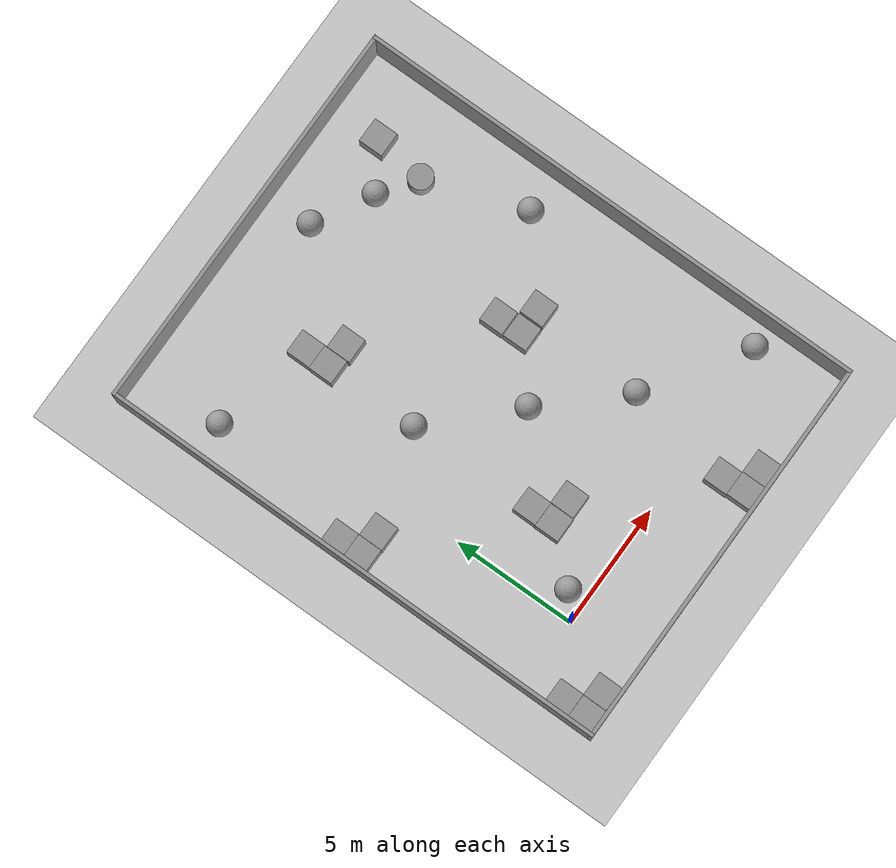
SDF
<sdf version="1.7">
 <world name="default">
  <light name="sun" type="directional">
   <pose>0 0 10 0 -0 0</pose>
   <diffuse>0.8 0.8 0.8 1</diffuse>
   <specular>0.2 0.2 0.2 1</specular>
   <attenuation>
    <range>1000</range>
    <constant>0.9</constant>
    <linear>0.01</linear>
    <quadratic>0.001</quadratic>
   </attenuation>
   <direction>-0.5 0.1 -0.9</direction>
   <spot><inner_angle>0</inner_angle><outer_angle>0</outer_angle><falloff>0</falloff></spot>
  </light>
  <model name="ground_plane">
   <pose>13.5 13.5 0 0 -0 0</pose>
   <static>1</static>
   <link name="link">
    <collision name="collision">
     <geometry><plane><normal>0 0 1</normal><size>100 100</size></plane></geometry>
     <surface><friction><ode><mu>100</mu><mu2>50</mu2></ode></friction></surface>
    </collision>
    <visual name="visual">
     <cast_shadows>0</cast_shadows>
     <geometry><plane><normal>0 0 1</normal><size>100 100</size></plane></geometry>
     <material>
      <script><uri>file://media/materials/scripts/gazebo.material</uri><name>Gazebo/Grey</name></script>
     </material>
    </visual>
   </link>
  </model>
  <gravity>0 0 -9.8</gravity>
  <magnetic_field>6e-06 2.3e-05 -4.2e-05</magnetic_field>
  <atmosphere type="adiabatic"/>
  <physics type="ode">
   <max_step_size>0.001</max_step_size>
   <real_time_factor>1</real_time_factor>
   <real_time_update_rate>1000</real_time_update_rate>
  </physics>
  <scene><ambient>0.4 0.4 0.4 1</ambient><background>0.7 0.7 0.7 1</background><shadows>1</shadows></scene>
  <audio><device>default</device></audio>
  <spherical_coordinates>
   <surface_model>EARTH_WGS84</surface_model>
   <latitude_deg>0</latitude_deg>
   <longitude_deg>0</longitude_deg>
   <elevation>0</elevation>
   <heading_deg>0</heading_deg>
  </spherical_coordinates>
  <model name="Untitled">
   <pose>5 7.5 0 0 -0 0</pose>
   <link name="Wall_0">
    <collision name="Wall_0_Collision">
     <geometry><box><size>16.15 0.15 2.5</size></box></geometry>
     <pose>0 0 1.25 0 -0 0</pose>
    </collision>
    <visual name="Wall_0_Visual">
     <pose>0 0 1.25 0 -0 0</pose>
     <geometry><box><size>16.15 0.15 2.5</size></box></geometry>
     <material>
      <script><uri>file://media/materials/scripts/gazebo.material</uri><name>Gazebo/Grey</name></script>
      <ambient>1 1 1 1</ambient>
     </material>
     <meta><layer>0</layer></meta>
    </visual>
    <pose>-0 -10.5 0 0 -0 0</pose>
   </link>
   <link name="Wall_2">
    <collision name="Wall_2_Collision">
     <geometry><box><size>21.15 0.15 2.5</size></box></geometry>
     <pose>0 0 1.25 0 -0 0</pose>
    </collision>
    <visual name="Wall_2_Visual">
     <pose>0 0 1.25 0 -0 0</pose>
     <geometry><box><size>21.15 0.15 2.5</size></box></geometry>
     <material>
      <script><uri>file://media/materials/scripts/gazebo.material</uri><name>Gazebo/Grey</name></script>
      <ambient>1 1 1 1</ambient>
     </material>
     <meta><layer>0</layer></meta>
    </visual>
    <pose>-8 0 0 0 -0 1.5708</pose>
   </link>
   <link name="Wall_4">
    <collision name="Wall_4_Collision">
     <geometry><box><size>16.15 0.15 2.5</size></box></geometry>
     <pose>0 0 1.25 0 -0 0</pose>
    </collision>
    <visual name="Wall_4_Visual">
     <pose>0 0 1.25 0 -0 0</pose>
     <geometry><box><size>16.15 0.15 2.5</size></box></geometry>
     <material>
      <script><uri>file://media/materials/scripts/gazebo.material</uri><name>Gazebo/Grey</name></script>
      <ambient>1 1 1 1</ambient>
     </material>
     <meta><layer>0</layer></meta>
    </visual>
    <pose>-0 10.5 0 0 -0 0</pose>
   </link>
   <link name="Wall_6">
    <collision name="Wall_6_Collision">
     <geometry><box><size>21.15 0.15 2.5</size></box></geometry>
     <pose>0 0 1.25 0 -0 0</pose>
    </collision>
    <visual name="Wall_6_Visual">
     <pose>0 0 1.25 0 -0 0</pose>
     <geometry><box><size>21.15 0.15 2.5</size></box></geometry>
     <material>
      <script><uri>file://media/materials/scripts/gazebo.material</uri><name>Gazebo/Grey</name></script>
      <ambient>1 1 1 1</ambient>
     </material>
     <meta><layer>0</layer></meta>
    </visual>
    <pose>8 0 0 0 -0 1.5708</pose>
   </link>
   <static>1</static>
  </model>
  <model name="unit_box">
   <pose>2.54139 3.54077 0.499995 0 -1e-05 -0.007258</pose>
   <link name="link">
    <inertial>
     <mass>1</mass>
     <inertia>
      <ixx>0.166667</ixx>
      <ixy>0</ixy>
      <ixz>0</ixz>
      <iyy>0.166667</iyy>
      <iyz>0</iyz>
      <izz>0.166667</izz>
     </inertia>
    </inertial>
    <collision name="collision"><geometry><box><size>1 1 1</size></box></geometry></collision>
    <visual name="visual">
     <geometry><box><size>1 1 1</size></box></geometry>
     <material>
      <script><name>Gazebo/Grey</name><uri>file://media/materials/scripts/gazebo.material</uri></script>
     </material>
    </visual>
   </link>
  </model>
  <model name="unit_box_0">
   <pose>2.52416 2.53778 0.499995 -0 1e-05 -0.001475</pose>
   <link name="link">
    <inertial>
     <mass>1</mass>
     <inertia>
      <ixx>0.166667</ixx>
      <ixy>0</ixy>
      <ixz>0</ixz>
      <iyy>0.166667</iyy>
      <iyz>0</iyz>
      <izz>0.166667</izz>
     </inertia>
    </inertial>
    <collision name="collision"><geometry><box><size>1 1 1</size></box></geometry></collision>
    <visual name="visual">
     <geometry><box><size>1 1 1</size></box></geometry>
     <material>
      <script><name>Gazebo/Grey</name><uri>file://media/materials/scripts/gazebo.material</uri></script>
     </material>
    </visual>
   </link>
  </model>
  <model name="unit_box_1">
   <pose>3.5347 2.56919 0.499995 -1e-05 -0 -0.006636</pose>
   <link name="link">
    <inertial>
     <mass>1</mass>
     <inertia>
      <ixx>0.166667</ixx>
      <ixy>0</ixy>
      <ixz>0</ixz>
      <iyy>0.166667</iyy>
      <iyz>0</iyz>
      <izz>0.166667</izz>
     </inertia>
    </inertial>
    <collision name="collision"><geometry><box><size>1 1 1</size></box></geometry></collision>
    <visual name="visual">
     <geometry><box><size>1 1 1</size></box></geometry>
     <material>
      <script><name>Gazebo/Grey</name><uri>file://media/materials/scripts/gazebo.material</uri></script>
     </material>
    </visual>
   </link>
  </model>
  <model name="unit_box_2">
   <pose>-2.40911 -1.40816 0.499995 -1e-05 -0 7.6e-05</pose>
   <link name="link">
    <inertial>
     <mass>1</mass>
     <inertia>
      <ixx>0.166667</ixx>
      <ixy>0</ixy>
      <ixz>0</ixz>
      <iyy>0.166667</iyy>
      <iyz>0</iyz>
      <izz>0.166667</izz>
     </inertia>
    </inertial>
    <collision name="collision"><geometry><box><size>1 1 1</size></box></geometry></collision>
    <visual name="visual">
     <geometry><box><size>1 1 1</size></box></geometry>
     <material>
      <script><name>Gazebo/Grey</name><uri>file://media/materials/scripts/gazebo.material</uri></script>
     </material>
    </visual>
   </link>
  </model>
  <model name="unit_box_3">
   <pose>-2.42275 -2.41137 0.499995 1e-05 -0 -0.004184</pose>
   <link name="link">
    <inertial>
     <mass>1</mass>
     <inertia>
      <ixx>0.166667</ixx>
      <ixy>0</ixy>
      <ixz>0</ixz>
      <iyy>0.166667</iyy>
      <iyz>0</iyz>
      <izz>0.166667</izz>
     </inertia>
    </inertial>
    <collision name="collision"><geometry><box><size>1 1 1</size></box></geometry></collision>
    <visual name="visual">
     <geometry><box><size>1 1 1</size></box></geometry>
     <material>
      <script><name>Gazebo/Grey</name><uri>file://media/materials/scripts/gazebo.material</uri></script>
     </material>
    </visual>
   </link>
  </model>
  <model name="unit_box_4">
   <pose>-1.42136 -2.40929 0.499995 -0 1e-05 -0.00231</pose>
   <link name="link">
    <inertial>
     <mass>1</mass>
     <inertia>
      <ixx>0.166667</ixx>
      <ixy>0</ixy>
      <ixz>0</ixz>
      <iyy>0.166667</iyy>
      <iyz>0</iyz>
      <izz>0.166667</izz>
     </inertia>
    </inertial>
    <collision name="collision"><geometry><box><size>1 1 1</size></box></geometry></collision>
    <visual name="visual">
     <geometry><box><size>1 1 1</size></box></geometry>
     <material>
      <script><name>Gazebo/Grey</name><uri>file://media/materials/scripts/gazebo.material</uri></script>
     </material>
    </visual>
   </link>
  </model>
  <model name="unit_box_5">
   <pose>7.48368 -2.42477 0.499995 -0 -1e-05 0.000442</pose>
   <link name="link">
    <inertial>
     <mass>1</mass>
     <inertia>
      <ixx>0.166667</ixx>
      <ixy>0</ixy>
      <ixz>0</ixz>
      <iyy>0.166667</iyy>
      <iyz>0</iyz>
      <izz>0.166667</izz>
     </inertia>
    </inertial>
    <collision name="collision"><geometry><box><size>1 1 1</size></box></geometry></collision>
    <visual name="visual">
     <geometry><box><size>1 1 1</size></box></geometry>
     <material>
      <script><name>Gazebo/Grey</name><uri>file://media/materials/scripts/gazebo.material</uri></script>
     </material>
    </visual>
   </link>
  </model>
  <model name="unit_box_6">
   <pose>8.48405 -2.42161 0.499995 1e-05 -0 -4e-05</pose>
   <link name="link">
    <inertial>
     <mass>1</mass>
     <inertia>
      <ixx>0.166667</ixx>
      <ixy>0</ixy>
      <ixz>0</ixz>
      <iyy>0.166667</iyy>
      <iyz>0</iyz>
      <izz>0.166667</izz>
     </inertia>
    </inertial>
    <collision name="collision"><geometry><box><size>1 1 1</size></box></geometry></collision>
    <visual name="visual">
     <geometry><box><size>1 1 1</size></box></geometry>
     <material>
      <script><name>Gazebo/Grey</name><uri>file://media/materials/scripts/gazebo.material</uri></script>
     </material>
    </visual>
   </link>
  </model>
  <model name="unit_box_7">
   <pose>7.45235 -1.42471 0.499995 -0 -1e-05 0.000585</pose>
   <link name="link">
    <inertial>
     <mass>1</mass>
     <inertia>
      <ixx>0.166667</ixx>
      <ixy>0</ixy>
      <ixz>0</ixz>
      <iyy>0.166667</iyy>
      <iyz>0</iyz>
      <izz>0.166667</izz>
     </inertia>
    </inertial>
    <collision name="collision"><geometry><box><size>1 1 1</size></box></geometry></collision>
    <visual name="visual">
     <geometry><box><size>1 1 1</size></box></geometry>
     <material>
      <script><name>Gazebo/Grey</name><uri>file://media/materials/scripts/gazebo.material</uri></script>
     </material>
    </visual>
   </link>
  </model>
  <model name="unit_box_8">
   <pose>7.48243 8.5473 0.499995 -1e-05 -0 -0</pose>
   <link name="link">
    <inertial>
     <mass>1</mass>
     <inertia>
      <ixx>0.166667</ixx>
      <ixy>0</ixy>
      <ixz>0</ixz>
      <iyy>0.166667</iyy>
      <iyz>0</iyz>
      <izz>0.166667</izz>
     </inertia>
    </inertial>
    <collision name="collision"><geometry><box><size>1 1 1</size></box></geometry></collision>
    <visual name="visual">
     <geometry><box><size>1 1 1</size></box></geometry>
     <material>
      <script><name>Gazebo/Grey</name><uri>file://media/materials/scripts/gazebo.material</uri></script>
     </material>
    </visual>
   </link>
  </model>
  <model name="unit_box_9">
   <pose>7.49809 7.50917 0.499995 0 -1e-05 0</pose>
   <link name="link">
    <inertial>
     <mass>1</mass>
     <inertia>
      <ixx>0.166667</ixx>
      <ixy>0</ixy>
      <ixz>0</ixz>
      <iyy>0.166667</iyy>
      <iyz>0</iyz>
      <izz>0.166667</izz>
     </inertia>
    </inertial>
    <collision name="collision"><geometry><box><size>1 1 1</size></box></geometry></collision>
    <visual name="visual">
     <geometry><box><size>1 1 1</size></box></geometry>
     <material>
      <script><name>Gazebo/Grey</name><uri>file://media/materials/scripts/gazebo.material</uri></script>
     </material>
    </visual>
   </link>
  </model>
  <model name="unit_box_10">
   <pose>8.5606 7.52025 0.499995 -1e-05 -0 -0</pose>
   <link name="link">
    <inertial>
     <mass>1</mass>
     <inertia>
      <ixx>0.166667</ixx>
      <ixy>0</ixy>
      <ixz>0</ixz>
      <iyy>0.166667</iyy>
      <iyz>0</iyz>
      <izz>0.166667</izz>
     </inertia>
    </inertial>
    <collision name="collision"><geometry><box><size>1 1 1</size></box></geometry></collision>
    <visual name="visual">
     <geometry><box><size>1 1 1</size></box></geometry>
     <material>
      <script><name>Gazebo/Grey</name><uri>file://media/materials/scripts/gazebo.material</uri></script>
     </material>
    </visual>
   </link>
  </model>
  <model name="unit_box_11">
   <pose>-2.4185 8.52025 0.499995 -1e-05 -0 0.000514</pose>
   <link name="link">
    <inertial>
     <mass>1</mass>
     <inertia>
      <ixx>0.166667</ixx>
      <ixy>0</ixy>
      <ixz>0</ixz>
      <iyy>0.166667</iyy>
      <iyz>0</iyz>
      <izz>0.166667</izz>
     </inertia>
    </inertial>
    <collision name="collision"><geometry><box><size>1 1 1</size></box></geometry></collision>
    <visual name="visual">
     <geometry><box><size>1 1 1</size></box></geometry>
     <material>
      <script><name>Gazebo/Grey</name><uri>file://media/materials/scripts/gazebo.material</uri></script>
     </material>
    </visual>
   </link>
  </model>
  <model name="unit_box_12">
   <pose>-2.42323 7.51829 0.499995 0 -1e-05 -0.003259</pose>
   <link name="link">
    <inertial>
     <mass>1</mass>
     <inertia>
      <ixx>0.166667</ixx>
      <ixy>0</ixy>
      <ixz>0</ixz>
      <iyy>0.166667</iyy>
      <iyz>0</iyz>
      <izz>0.166667</izz>
     </inertia>
    </inertial>
    <collision name="collision"><geometry><box><size>1 1 1</size></box></geometry></collision>
    <visual name="visual">
     <geometry><box><size>1 1 1</size></box></geometry>
     <material>
      <script><name>Gazebo/Grey</name><uri>file://media/materials/scripts/gazebo.material</uri></script>
     </material>
    </visual>
   </link>
  </model>
  <model name="unit_box_13">
   <pose>-1.42272 7.49644 0.499995 1e-05 0 -0.004427</pose>
   <link name="link">
    <inertial>
     <mass>1</mass>
     <inertia>
      <ixx>0.166667</ixx>
      <ixy>0</ixy>
      <ixz>0</ixz>
      <iyy>0.166667</iyy>
      <iyz>0</iyz>
      <izz>0.166667</izz>
     </inertia>
    </inertial>
    <collision name="collision"><geometry><box><size>1 1 1</size></box></geometry></collision>
    <visual name="visual">
     <geometry><box><size>1 1 1</size></box></geometry>
     <material>
      <script><name>Gazebo/Grey</name><uri>file://media/materials/scripts/gazebo.material</uri></script>
     </material>
    </visual>
   </link>
  </model>
  <model name="unit_box_14">
   <pose>2.44329 13.5367 0.499995 -1e-05 -0 -0.000459</pose>
   <link name="link">
    <inertial>
     <mass>1</mass>
     <inertia>
      <ixx>0.166667</ixx>
      <ixy>0</ixy>
      <ixz>0</ixz>
      <iyy>0.166667</iyy>
      <iyz>0</iyz>
      <izz>0.166667</izz>
     </inertia>
    </inertial>
    <collision name="collision"><geometry><box><size>1 1 1</size></box></geometry></collision>
    <visual name="visual">
     <geometry><box><size>1 1 1</size></box></geometry>
     <material>
      <script><name>Gazebo/Grey</name><uri>file://media/materials/scripts/gazebo.material</uri></script>
     </material>
    </visual>
   </link>
  </model>
  <model name="unit_box_15">
   <pose>2.43078 12.5367 0.499995 -1e-05 -0 -0.000457</pose>
   <link name="link">
    <inertial>
     <mass>1</mass>
     <inertia>
      <ixx>0.166667</ixx>
      <ixy>0</ixy>
      <ixz>0</ixz>
      <iyy>0.166667</iyy>
      <iyz>0</iyz>
      <izz>0.166667</izz>
     </inertia>
    </inertial>
    <collision name="collision"><geometry><box><size>1 1 1</size></box></geometry></collision>
    <visual name="visual">
     <geometry><box><size>1 1 1</size></box></geometry>
     <material>
      <script><name>Gazebo/Grey</name><uri>file://media/materials/scripts/gazebo.material</uri></script>
     </material>
    </visual>
   </link>
  </model>
  <model name="unit_box_16">
   <pose>3.43969 12.4553 0.499995 -1e-05 -0 -0</pose>
   <link name="link">
    <inertial>
     <mass>1</mass>
     <inertia>
      <ixx>0.166667</ixx>
      <ixy>0</ixy>
      <ixz>0</ixz>
      <iyy>0.166667</iyy>
      <iyz>0</iyz>
      <izz>0.166667</izz>
     </inertia>
    </inertial>
    <collision name="collision"><geometry><box><size>1 1 1</size></box></geometry></collision>
    <visual name="visual">
     <geometry><box><size>1 1 1</size></box></geometry>
     <material>
      <script><name>Gazebo/Grey</name><uri>file://media/materials/scripts/gazebo.material</uri></script>
     </material>
    </visual>
   </link>
  </model>
  <model name="unit_sphere">
   <pose>8.60647 14.8849 0.5 0 -0 0</pose>
   <link name="link">
    <inertial>
     <mass>1</mass>
     <inertia><ixx>0.1</ixx><ixy>0</ixy><ixz>0</ixz><iyy>0.1</iyy><iyz>0</iyz><izz>0.1</izz></inertia>
    </inertial>
    <collision name="collision"><geometry><sphere><radius>0.5</radius></sphere></geometry></collision>
    <visual name="visual">
     <geometry><sphere><radius>0.5</radius></sphere></geometry>
     <material>
      <script><name>Gazebo/Grey</name><uri>file://media/materials/scripts/gazebo.material</uri></script>
     </material>
    </visual>
   </link>
  </model>
  <model name="unit_box_17">
   <pose>10.288 15.9504 0.499995 -1e-05 -0 -0</pose>
   <link name="link">
    <inertial>
     <mass>1</mass>
     <inertia>
      <ixx>0.166667</ixx>
      <ixy>0</ixy>
      <ixz>0</ixz>
      <iyy>0.166667</iyy>
      <iyz>0</iyz>
      <izz>0.166667</izz>
     </inertia>
    </inertial>
    <collision name="collision"><geometry><box><size>1 1 1</size></box></geometry></collision>
    <visual name="visual">
     <geometry><box><size>1 1 1</size></box></geometry>
     <material>
      <script><name>Gazebo/Grey</name><uri>file://media/materials/scripts/gazebo.material</uri></script>
     </material>
    </visual>
   </link>
  </model>
  <model name="unit_cylinder">
   <pose>10.0032 13.8461 0.499992 -3e-06 3e-06 0</pose>
   <link name="link">
    <inertial>
     <mass>1</mass>
     <inertia><ixx>0.145833</ixx><ixy>0</ixy><ixz>0</ixz><iyy>0.145833</iyy><iyz>0</iyz><izz>0.125</izz></inertia>
    </inertial>
    <collision name="collision">
     <geometry><cylinder><radius>0.5</radius><length>1</length></cylinder></geometry>
    </collision>
    <visual name="visual">
     <geometry><cylinder><radius>0.5</radius><length>1</length></cylinder></geometry>
     <material>
      <script><name>Gazebo/Grey</name><uri>file://media/materials/scripts/gazebo.material</uri></script>
     </material>
    </visual>
   </link>
  </model>
  <model name="unit_sphere_0">
   <pose>0.888756 0.747241 0.5 0 -0 0</pose>
   <link name="link">
    <inertial>
     <mass>1</mass>
     <inertia><ixx>0.1</ixx><ixy>0</ixy><ixz>0</ixz><iyy>0.1</iyy><iyz>0</iyz><izz>0.1</izz></inertia>
    </inertial>
    <collision name="collision"><geometry><sphere><radius>0.5</radius></sphere></geometry></collision>
    <visual name="visual">
     <geometry><sphere><radius>0.5</radius></sphere></geometry>
     <material>
      <script><name>Gazebo/Grey</name><uri>file://media/materials/scripts/gazebo.material</uri></script>
     </material>
    </visual>
   </link>
  </model>
  <model name="unit_sphere_1">
   <pose>5.46949 5.78108 0.5 0 -0 0</pose>
   <link name="link">
    <inertial>
     <mass>1</mass>
     <inertia><ixx>0.1</ixx><ixy>0</ixy><ixz>0</ixz><iyy>0.1</iyy><iyz>0</iyz><izz>0.1</izz></inertia>
    </inertial>
    <collision name="collision"><geometry><sphere><radius>0.5</radius></sphere></geometry></collision>
    <visual name="visual">
     <geometry><sphere><radius>0.5</radius></sphere></geometry>
     <material>
      <script><name>Gazebo/Grey</name><uri>file://media/materials/scripts/gazebo.material</uri></script>
     </material>
    </visual>
   </link>
  </model>
  <model name="unit_sphere_2">
   <pose>2.46411 8.74698 0.5 0 -0 0</pose>
   <link name="link">
    <inertial>
     <mass>1</mass>
     <inertia><ixx>0.1</ixx><ixy>0</ixy><ixz>0</ixz><iyy>0.1</iyy><iyz>0</iyz><izz>0.1</izz></inertia>
    </inertial>
    <collision name="collision"><geometry><sphere><radius>0.5</radius></sphere></geometry></collision>
    <visual name="visual">
     <geometry><sphere><radius>0.5</radius></sphere></geometry>
     <material>
      <script><name>Gazebo/Grey</name><uri>file://media/materials/scripts/gazebo.material</uri></script>
     </material>
    </visual>
   </link>
  </model>
  <model name="unit_sphere_3">
   <pose>8.18013 2.89002 0.5 0 -0 0</pose>
   <link name="link">
    <inertial>
     <mass>1</mass>
     <inertia><ixx>0.1</ixx><ixy>0</ixy><ixz>0</ixz><iyy>0.1</iyy><iyz>0</iyz><izz>0.1</izz></inertia>
    </inertial>
    <collision name="collision"><geometry><sphere><radius>0.5</radius></sphere></geometry></collision>
    <visual name="visual">
     <geometry><sphere><radius>0.5</radius></sphere></geometry>
     <material>
      <script><name>Gazebo/Grey</name><uri>file://media/materials/scripts/gazebo.material</uri></script>
     </material>
    </visual>
   </link>
  </model>
  <model name="unit_sphere_4">
   <pose>-1.56252 14.5318 0.5 0 -0 0</pose>
   <link name="link">
    <inertial>
     <mass>1</mass>
     <inertia><ixx>0.1</ixx><ixy>0</ixy><ixz>0</ixz><iyy>0.1</iyy><iyz>0</iyz><izz>0.1</izz></inertia>
    </inertial>
    <collision name="collision"><geometry><sphere><radius>0.5</radius></sphere></geometry></collision>
    <visual name="visual">
     <geometry><sphere><radius>0.5</radius></sphere></geometry>
     <material>
      <script><name>Gazebo/Grey</name><uri>file://media/materials/scripts/gazebo.material</uri></script>
     </material>
    </visual>
   </link>
  </model>
  <model name="unit_sphere_5">
   <pose>6.32327 16.1697 0.5 0 -0 0</pose>
   <link name="link">
    <inertial>
     <mass>1</mass>
     <inertia><ixx>0.1</ixx><ixy>0</ixy><ixz>0</ixz><iyy>0.1</iyy><iyz>0</iyz><izz>0.1</izz></inertia>
    </inertial>
    <collision name="collision"><geometry><sphere><radius>0.5</radius></sphere></geometry></collision>
    <visual name="visual">
     <geometry><sphere><radius>0.5</radius></sphere></geometry>
     <material>
      <script><name>Gazebo/Grey</name><uri>file://media/materials/scripts/gazebo.material</uri></script>
     </material>
    </visual>
   </link>
  </model>
  <model name="unit_sphere_6">
   <pose>11.3992 9.90614 0.5 0 -0 0</pose>
   <link name="link">
    <inertial>
     <mass>1</mass>
     <inertia><ixx>0.1</ixx><ixy>0</ixy><ixz>0</ixz><iyy>0.1</iyy><iyz>0</iyz><izz>0.1</izz></inertia>
    </inertial>
    <collision name="collision"><geometry><sphere><radius>0.5</radius></sphere></geometry></collision>
    <visual name="visual">
     <geometry><sphere><radius>0.5</radius></sphere></geometry>
     <material>
      <script><name>Gazebo/Grey</name><uri>file://media/materials/scripts/gazebo.material</uri></script>
     </material>
    </visual>
   </link>
  </model>
  <model name="unit_sphere_7">
   <pose>12.0541 0.354629 0.5 0 -0 0</pose>
   <link name="link">
    <inertial>
     <mass>1</mass>
     <inertia><ixx>0.1</ixx><ixy>0</ixy><ixz>0</ixz><iyy>0.1</iyy><iyz>0</iyz><izz>0.1</izz></inertia>
    </inertial>
    <collision name="collision"><geometry><sphere><radius>0.5</radius></sphere></geometry></collision>
    <visual name="visual">
     <geometry><sphere><radius>0.5</radius></sphere></geometry>
     <material>
      <script><name>Gazebo/Grey</name><uri>file://media/materials/scripts/gazebo.material</uri></script>
     </material>
    </visual>
   </link>
  </model>
 </world>
</sdf>
